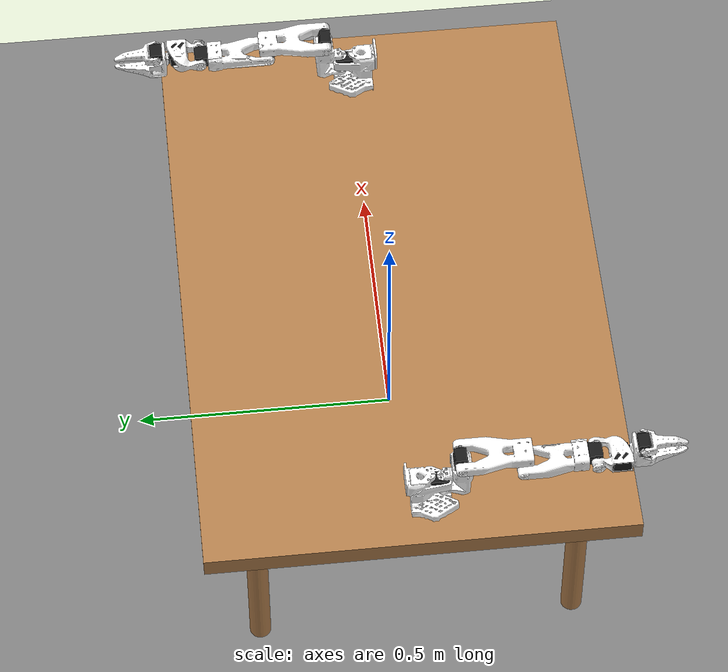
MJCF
<?xml version='1.0' encoding='utf-8'?>
<mujoco model="base_scene">
  <compiler angle="radian" meshdir="../../tauro_common/models/so_arm100/assets/" />

  <option cone="elliptic" impratio="10" integrator="implicitfast" />

  <asset>

    <material name="ground_mat" rgba="0.5 0.5 0.5 1" />
    <material name="table_mat" rgba="0.7 0.5 0.3 1" />
    <material name="wall_mat" rgba="0.9 0.9 0.9 1" />
  <mesh name="Base" file="Base.stl" />
    <mesh name="Base_Motor" file="Base_Motor.stl" />
    <mesh name="Rotation_Pitch" file="Rotation_Pitch.stl" />
    <mesh name="Rotation_Pitch_Motor" file="Rotation_Pitch_Motor.stl" />
    <mesh name="Upper_Arm" file="Upper_Arm.stl" />
    <mesh name="Upper_Arm_Motor" file="Upper_Arm_Motor.stl" />
    <mesh name="Lower_Arm" file="Lower_Arm.stl" />
    <mesh name="Lower_Arm_Motor" file="Lower_Arm_Motor.stl" />
    <mesh name="Wrist_Pitch_Roll" file="Wrist_Pitch_Roll.stl" />
    <mesh name="Wrist_Pitch_Roll_Motor" file="Wrist_Pitch_Roll_Motor.stl" />
    <mesh name="Fixed_Jaw" file="Fixed_Jaw.stl" />
    <mesh name="Fixed_Jaw_Motor" file="Fixed_Jaw_Motor.stl" />
    <mesh name="Fixed_Jaw_Collision_1" file="Fixed_Jaw_Collision_1.stl" />
    <mesh name="Fixed_Jaw_Collision_2" file="Fixed_Jaw_Collision_2.stl" />
    <mesh name="Moving_Jaw" file="Moving_Jaw.stl" />
    <mesh name="Moving_Jaw_Collision_1" file="Moving_Jaw_Collision_1.stl" />
    <mesh name="Moving_Jaw_Collision_2" file="Moving_Jaw_Collision_2.stl" />
    <mesh name="Moving_Jaw_Collision_3" file="Moving_Jaw_Collision_3.stl" />
  <material name="white" rgba="1 1 1 1" />
    <material name="black" rgba="0.1 0.1 0.1 1" />

    </asset>

  <worldbody>

    <geom name="ground" type="plane" size="3 3 0.1" material="ground_mat" />

    <light name="main_light" pos="0 0 3" dir="0 0 -1" diffuse="0.8 0.8 0.8" specular="0.3 0.3 0.3" />
    <light name="ambient_light" pos="2 2 2" dir="-1 -1 -1" diffuse="0.4 0.4 0.4" />

    <body name="table" pos="0 0 0.4">
      <geom name="table_top" type="box" size="0.6 0.4 0.02" material="table_mat" />
      <geom name="table_leg1" type="cylinder" pos="0.5 0.3 -0.2" size="0.02 0.2" material="table_mat" />
      <geom name="table_leg2" type="cylinder" pos="-0.5 0.3 -0.2" size="0.02 0.2" material="table_mat" />
      <geom name="table_leg3" type="cylinder" pos="0.5 -0.3 -0.2" size="0.02 0.2" material="table_mat" />
      <geom name="table_leg4" type="cylinder" pos="-0.5 -0.3 -0.2" size="0.02 0.2" material="table_mat" />
    </body>
  <body name="robot_001" pos="0.5 0 0.42" euler="0 0 3.14159"><body name="robot_001/Base" childclass="so_arm100">
      <geom type="mesh" mesh="Base" class="visual" />
      <geom type="mesh" mesh="Base_Motor" class="motor_visual" />
      <geom type="mesh" mesh="Base" class="collision" />
      <body name="robot_001/Rotation_Pitch" pos="0 -0.0452 0.0165" quat="0.707105 0.707108 0 0">
        <inertial pos="-9.07886e-05 0.0590972 0.031089" quat="0.363978 0.441169 -0.623108 0.533504" mass="0.119226" diaginertia="5.94278e-05 5.89975e-05 3.13712e-05" />
        <joint name="robot_001/Rotation" class="Rotation" />
        <geom type="mesh" mesh="Rotation_Pitch" class="visual" />
        <geom type="mesh" mesh="Rotation_Pitch_Motor" class="motor_visual" />
        <geom type="mesh" mesh="Rotation_Pitch" class="collision" />
        <body name="robot_001/Upper_Arm" pos="0 0.1025 0.0306" euler="1.57079 0 0">
          <inertial pos="-1.72052e-05 0.0701802 0.00310545" quat="0.50104 0.498994 -0.493562 0.50632" mass="0.162409" diaginertia="0.000213312 0.000167164 7.01522e-05" />
          <joint name="robot_001/Pitch" class="Pitch" />
          <geom type="mesh" mesh="Upper_Arm" class="visual" />
          <geom type="mesh" mesh="Upper_Arm_Motor" class="motor_visual" />
          <geom type="mesh" mesh="Upper_Arm" class="collision" />
          <body name="robot_001/Lower_Arm" pos="0 0.11257 0.028" euler="-1.57079 0 0">
            <inertial pos="-0.00339604 0.00137796 0.0768007" quat="0.701995 0.0787996 0.0645626 0.704859" mass="0.147968" diaginertia="0.000138803 0.000107748 4.84242e-05" />
            <joint name="robot_001/Elbow" class="Elbow" />
            <geom type="mesh" mesh="Lower_Arm" class="visual" />
            <geom type="mesh" mesh="Lower_Arm_Motor" class="motor_visual" />
            <geom type="mesh" mesh="Lower_Arm" class="collision" />
            <body name="robot_001/Wrist_Pitch_Roll" pos="0 0.0052 0.1349" euler="-1.57079 0 0">
              <inertial pos="-0.00852653 -0.0352279 -2.34622e-05" quat="-0.0522806 0.705235 0.0549524 0.704905" mass="0.0661321" diaginertia="3.45403e-05 2.39041e-05 1.94704e-05" />
              <joint name="robot_001/Wrist_Pitch" class="Wrist_Pitch" />
              <geom type="mesh" mesh="Wrist_Pitch_Roll" class="visual" />
              <geom type="mesh" mesh="Wrist_Pitch_Roll_Motor" class="motor_visual" />
              <geom type="mesh" mesh="Wrist_Pitch_Roll" class="collision" />
              <body name="robot_001/Fixed_Jaw" pos="0 -0.0601 0" euler="0 1.57079 0">
                <inertial pos="0.00552377 -0.0280167 0.000483583" quat="0.41836 0.620891 -0.350644 0.562599" mass="0.0929859" diaginertia="5.03136e-05 4.64098e-05 2.72961e-05" />
                <joint name="robot_001/Wrist_Roll" class="Wrist_Roll" />
                <geom type="mesh" mesh="Fixed_Jaw" class="visual" />
                <geom type="mesh" mesh="Fixed_Jaw_Motor" class="motor_visual" />
                <geom type="mesh" mesh="Fixed_Jaw_Collision_1" class="collision" />
                <geom type="mesh" mesh="Fixed_Jaw_Collision_2" class="collision" />
                <geom class="finger_collision" name="robot_001/fixed_jaw_pad_1" size="0.001 0.005 0.004" pos="0.0089 -0.1014 0" />
                <geom class="finger_collision" name="robot_001/fixed_jaw_pad_2" size="0.001 0.005 0.006" pos="0.0109 -0.0914 0" />
                <geom class="finger_collision" name="robot_001/fixed_jaw_pad_3" size="0.001 0.01 0.007" pos="0.0126 -0.0768 0" />
                <geom class="finger_collision" name="robot_001/fixed_jaw_pad_4" size="0.001 0.01 0.008" pos="0.0143 -0.0572 0" />
                <body name="robot_001/Moving_Jaw" pos="-0.0202 -0.0244 0" quat="1.34924e-11 -3.67321e-06 1 -3.67321e-06">
                  <inertial pos="-0.00161745 -0.0303473 0.000449646" quat="0.696562 0.716737 -0.0239844 -0.0227026" mass="0.0202444" diaginertia="1.11265e-05 8.99651e-06 2.99548e-06" />
                  <joint name="robot_001/Jaw" class="Jaw" />
                  <geom type="mesh" mesh="Moving_Jaw" class="visual" />
                  <geom type="mesh" mesh="Moving_Jaw_Collision_1" class="collision" />
                  <geom type="mesh" mesh="Moving_Jaw_Collision_2" class="collision" />
                  <geom type="mesh" mesh="Moving_Jaw_Collision_3" class="collision" />
                  <geom class="finger_collision" name="robot_001/moving_jaw_pad_1" size="0.001 0.005 0.004" pos="-0.0113 -0.077 0" />
                  <geom class="finger_collision" name="robot_001/moving_jaw_pad_2" size="0.001 0.005 0.006" pos="-0.0093 -0.067 0" />
                  <geom class="finger_collision" name="robot_001/moving_jaw_pad_3" size="0.001 0.01 0.006" pos="-0.0073 -0.055 0" />
                  <geom class="finger_collision" name="robot_001/moving_jaw_pad_4" size="0.001 0.01 0.008" pos="-0.0073 -0.035 0" />
                </body>
              </body>
            </body>
          </body>
        </body>
      </body>
    </body>
  </body><body name="robot_002" pos="-0.5 0 0.42"><body name="robot_002/Base" childclass="so_arm100">
      <geom type="mesh" mesh="Base" class="visual" />
      <geom type="mesh" mesh="Base_Motor" class="motor_visual" />
      <geom type="mesh" mesh="Base" class="collision" />
      <body name="robot_002/Rotation_Pitch" pos="0 -0.0452 0.0165" quat="0.707105 0.707108 0 0">
        <inertial pos="-9.07886e-05 0.0590972 0.031089" quat="0.363978 0.441169 -0.623108 0.533504" mass="0.119226" diaginertia="5.94278e-05 5.89975e-05 3.13712e-05" />
        <joint name="robot_002/Rotation" class="Rotation" />
        <geom type="mesh" mesh="Rotation_Pitch" class="visual" />
        <geom type="mesh" mesh="Rotation_Pitch_Motor" class="motor_visual" />
        <geom type="mesh" mesh="Rotation_Pitch" class="collision" />
        <body name="robot_002/Upper_Arm" pos="0 0.1025 0.0306" euler="1.57079 0 0">
          <inertial pos="-1.72052e-05 0.0701802 0.00310545" quat="0.50104 0.498994 -0.493562 0.50632" mass="0.162409" diaginertia="0.000213312 0.000167164 7.01522e-05" />
          <joint name="robot_002/Pitch" class="Pitch" />
          <geom type="mesh" mesh="Upper_Arm" class="visual" />
          <geom type="mesh" mesh="Upper_Arm_Motor" class="motor_visual" />
          <geom type="mesh" mesh="Upper_Arm" class="collision" />
          <body name="robot_002/Lower_Arm" pos="0 0.11257 0.028" euler="-1.57079 0 0">
            <inertial pos="-0.00339604 0.00137796 0.0768007" quat="0.701995 0.0787996 0.0645626 0.704859" mass="0.147968" diaginertia="0.000138803 0.000107748 4.84242e-05" />
            <joint name="robot_002/Elbow" class="Elbow" />
            <geom type="mesh" mesh="Lower_Arm" class="visual" />
            <geom type="mesh" mesh="Lower_Arm_Motor" class="motor_visual" />
            <geom type="mesh" mesh="Lower_Arm" class="collision" />
            <body name="robot_002/Wrist_Pitch_Roll" pos="0 0.0052 0.1349" euler="-1.57079 0 0">
              <inertial pos="-0.00852653 -0.0352279 -2.34622e-05" quat="-0.0522806 0.705235 0.0549524 0.704905" mass="0.0661321" diaginertia="3.45403e-05 2.39041e-05 1.94704e-05" />
              <joint name="robot_002/Wrist_Pitch" class="Wrist_Pitch" />
              <geom type="mesh" mesh="Wrist_Pitch_Roll" class="visual" />
              <geom type="mesh" mesh="Wrist_Pitch_Roll_Motor" class="motor_visual" />
              <geom type="mesh" mesh="Wrist_Pitch_Roll" class="collision" />
              <body name="robot_002/Fixed_Jaw" pos="0 -0.0601 0" euler="0 1.57079 0">
                <inertial pos="0.00552377 -0.0280167 0.000483583" quat="0.41836 0.620891 -0.350644 0.562599" mass="0.0929859" diaginertia="5.03136e-05 4.64098e-05 2.72961e-05" />
                <joint name="robot_002/Wrist_Roll" class="Wrist_Roll" />
                <geom type="mesh" mesh="Fixed_Jaw" class="visual" />
                <geom type="mesh" mesh="Fixed_Jaw_Motor" class="motor_visual" />
                <geom type="mesh" mesh="Fixed_Jaw_Collision_1" class="collision" />
                <geom type="mesh" mesh="Fixed_Jaw_Collision_2" class="collision" />
                <geom class="finger_collision" name="robot_002/fixed_jaw_pad_1" size="0.001 0.005 0.004" pos="0.0089 -0.1014 0" />
                <geom class="finger_collision" name="robot_002/fixed_jaw_pad_2" size="0.001 0.005 0.006" pos="0.0109 -0.0914 0" />
                <geom class="finger_collision" name="robot_002/fixed_jaw_pad_3" size="0.001 0.01 0.007" pos="0.0126 -0.0768 0" />
                <geom class="finger_collision" name="robot_002/fixed_jaw_pad_4" size="0.001 0.01 0.008" pos="0.0143 -0.0572 0" />
                <body name="robot_002/Moving_Jaw" pos="-0.0202 -0.0244 0" quat="1.34924e-11 -3.67321e-06 1 -3.67321e-06">
                  <inertial pos="-0.00161745 -0.0303473 0.000449646" quat="0.696562 0.716737 -0.0239844 -0.0227026" mass="0.0202444" diaginertia="1.11265e-05 8.99651e-06 2.99548e-06" />
                  <joint name="robot_002/Jaw" class="Jaw" />
                  <geom type="mesh" mesh="Moving_Jaw" class="visual" />
                  <geom type="mesh" mesh="Moving_Jaw_Collision_1" class="collision" />
                  <geom type="mesh" mesh="Moving_Jaw_Collision_2" class="collision" />
                  <geom type="mesh" mesh="Moving_Jaw_Collision_3" class="collision" />
                  <geom class="finger_collision" name="robot_002/moving_jaw_pad_1" size="0.001 0.005 0.004" pos="-0.0113 -0.077 0" />
                  <geom class="finger_collision" name="robot_002/moving_jaw_pad_2" size="0.001 0.005 0.006" pos="-0.0093 -0.067 0" />
                  <geom class="finger_collision" name="robot_002/moving_jaw_pad_3" size="0.001 0.01 0.006" pos="-0.0073 -0.055 0" />
                  <geom class="finger_collision" name="robot_002/moving_jaw_pad_4" size="0.001 0.01 0.008" pos="-0.0073 -0.035 0" />
                </body>
              </body>
            </body>
          </body>
        </body>
      </body>
    </body>
  </body></worldbody>
<actuator><position class="Rotation" name="robot_001/Rotation" joint="robot_001/Rotation" inheritrange="1" />
    <position class="Pitch" name="robot_001/Pitch" joint="robot_001/Pitch" inheritrange="1" />
    <position class="Elbow" name="robot_001/Elbow" joint="robot_001/Elbow" inheritrange="1" />
    <position class="Wrist_Pitch" name="robot_001/Wrist_Pitch" joint="robot_001/Wrist_Pitch" inheritrange="1" />
    <position class="Wrist_Roll" name="robot_001/Wrist_Roll" joint="robot_001/Wrist_Roll" inheritrange="1" />
    <position class="Jaw" name="robot_001/Jaw" joint="robot_001/Jaw" inheritrange="1" />
  <position class="Rotation" name="robot_002/Rotation" joint="robot_002/Rotation" inheritrange="1" />
    <position class="Pitch" name="robot_002/Pitch" joint="robot_002/Pitch" inheritrange="1" />
    <position class="Elbow" name="robot_002/Elbow" joint="robot_002/Elbow" inheritrange="1" />
    <position class="Wrist_Pitch" name="robot_002/Wrist_Pitch" joint="robot_002/Wrist_Pitch" inheritrange="1" />
    <position class="Wrist_Roll" name="robot_002/Wrist_Roll" joint="robot_002/Wrist_Roll" inheritrange="1" />
    <position class="Jaw" name="robot_002/Jaw" joint="robot_002/Jaw" inheritrange="1" />
  </actuator><default>
    <default class="so_arm100">
      <joint frictionloss="0.1" armature="0.1" />
      <position kp="50" dampratio="1" forcerange="-3.5 3.5" />
      <default class="Rotation">
        <joint axis="0 -1 0" range="-1.92 1.92" />
      </default>
      <default class="Pitch">
        <joint axis="1 0 0" range="-3.32 0.174" />
      </default>
      <default class="Elbow">
        <joint axis="1 0 0" range="-0.174 3.14" />
      </default>
      <default class="Wrist_Pitch">
        <joint axis="1 0 0" range="-1.66 1.66" />
      </default>
      <default class="Wrist_Roll">
        <joint axis="0 1 0" range="-2.79 2.79" />
      </default>
      <default class="Jaw">
        <joint axis="0 0 1" range="-0.174 1.75" />
      </default>
      <default class="visual">
        <geom type="mesh" contype="0" conaffinity="0" density="0" group="2" material="white" />
        <default class="motor_visual">
          <geom material="black" />
        </default>
      </default>
      <default class="collision">
        <geom group="3" type="mesh" material="white" />
        <default class="finger_collision">
          <geom type="box" solimp="2 1 0.01" solref="0.01 1" friction="1 0.005 0.0001" />
        </default>
      </default>
    </default>
  </default>

  </mujoco>
